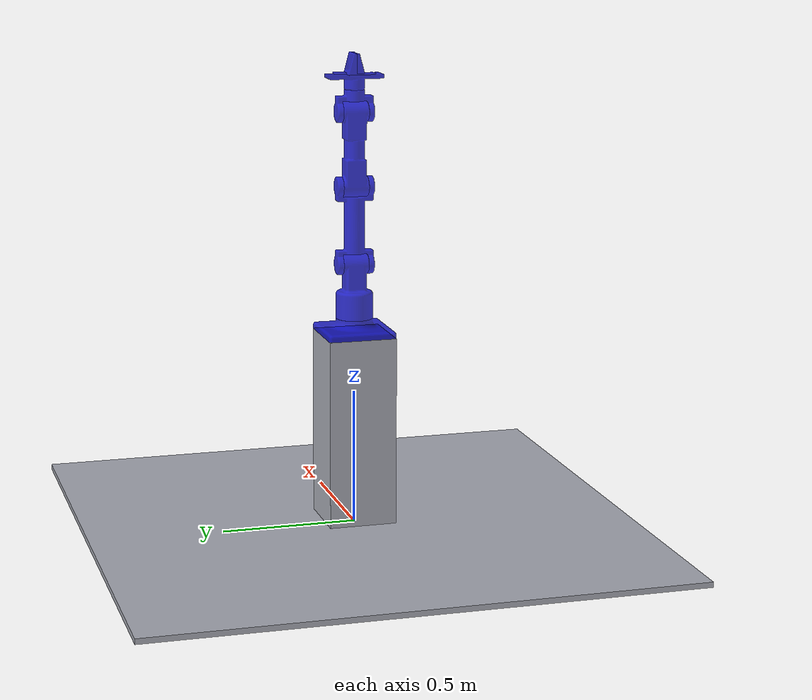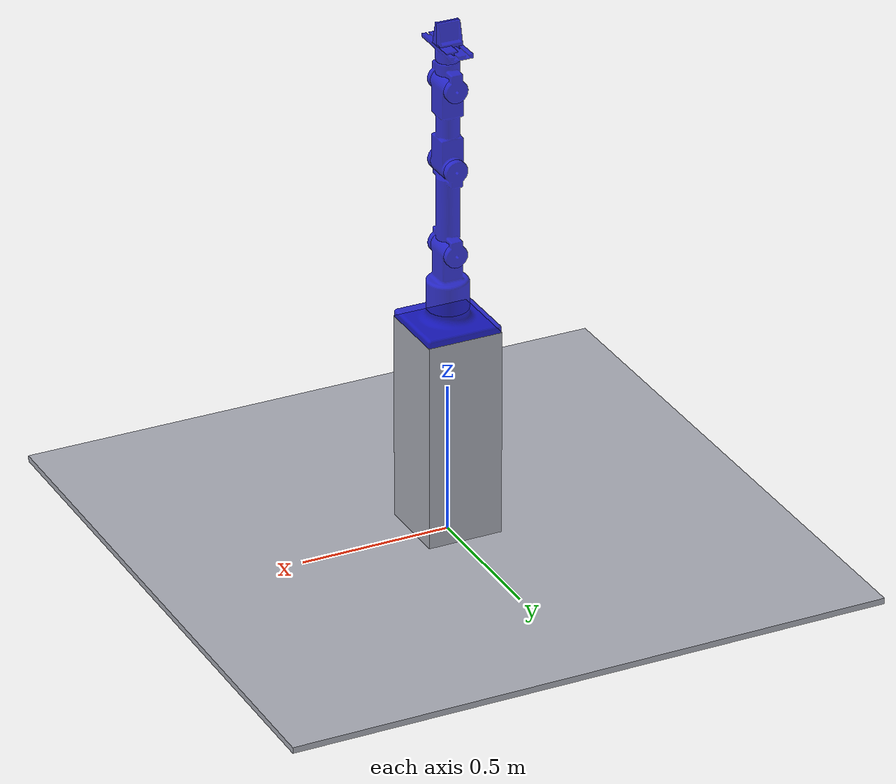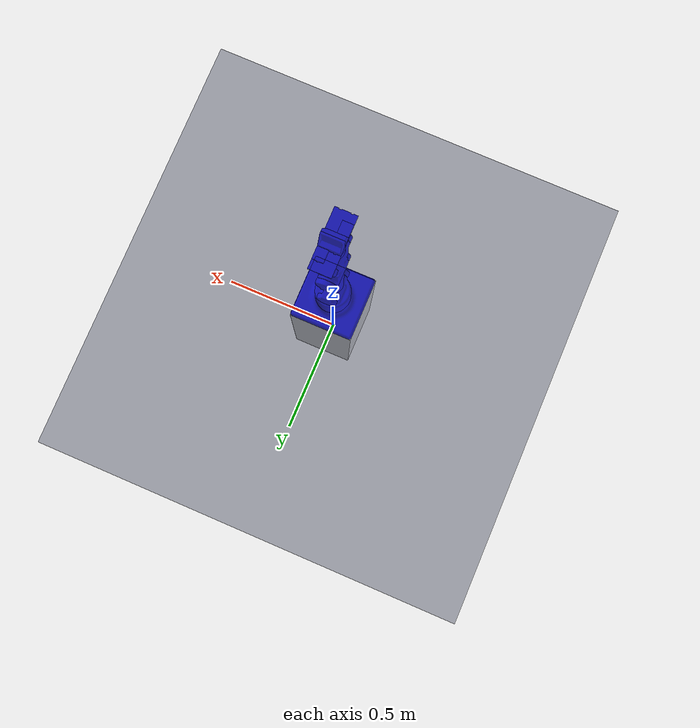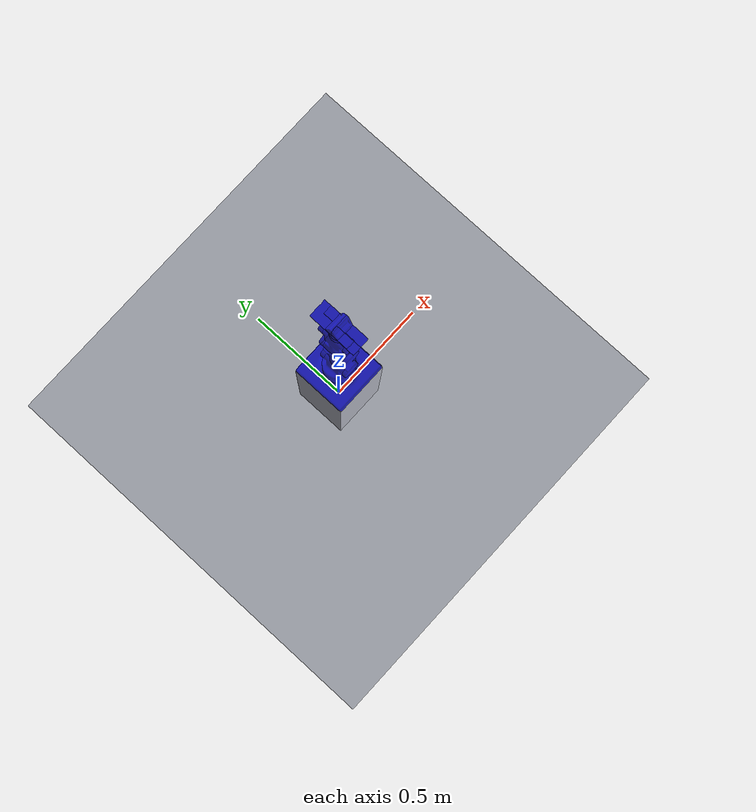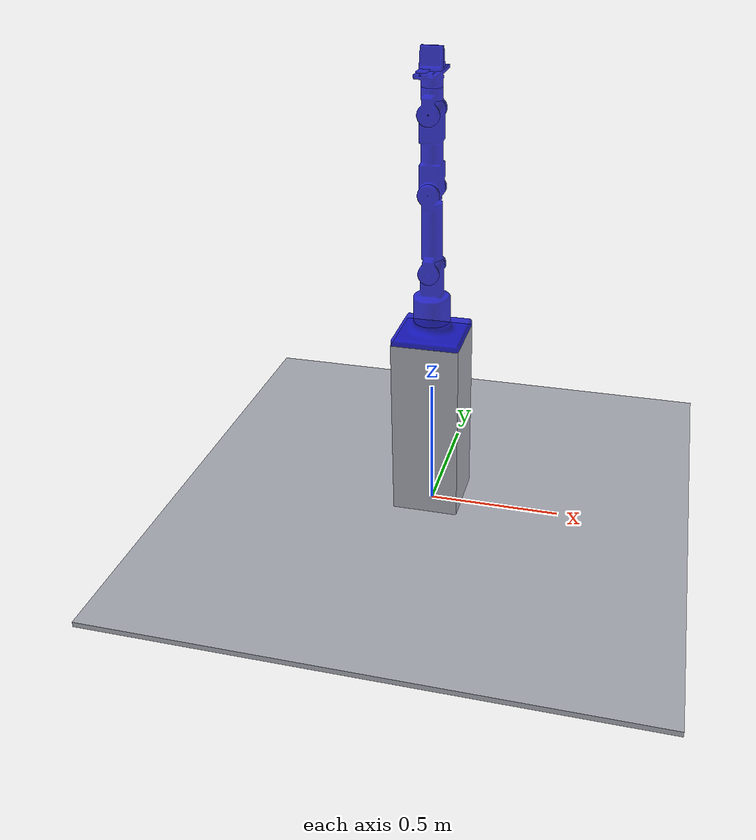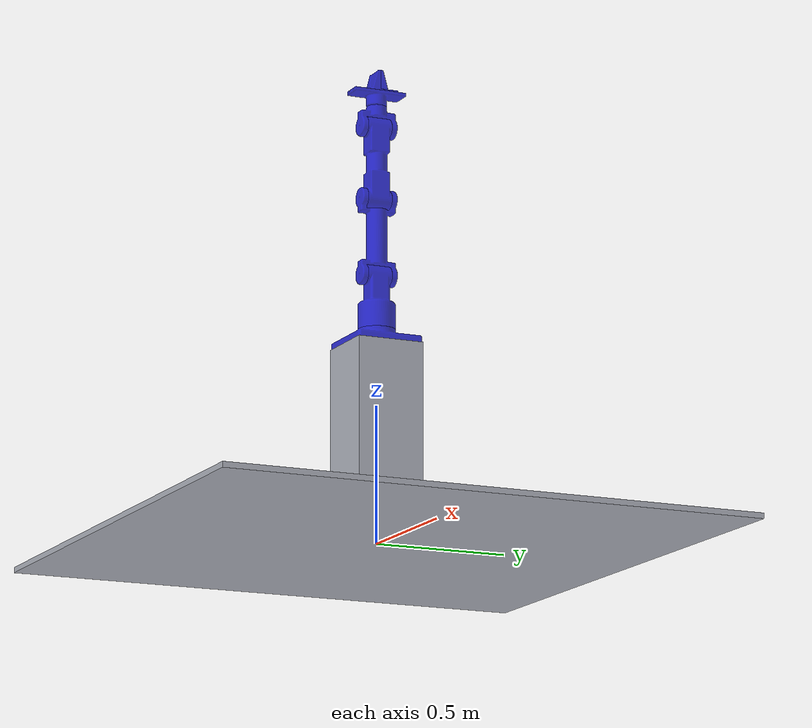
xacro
<?xml version="1.0" ?>

<robot name="robot_stand" xmlns:xacro="http://ros.org/wiki/xacro">
    <xacro:include filename="$(find custom_robot_sim)/urdf/robot_description_no_dummy.urdf.xacro" />

    <link name="base_footprint"/>

    <joint name="footprint_joint" type="fixed">
        <parent link="base_footprint"/>
        <child link="robot_stand_base_link" />
        <origin xyz="0 0 0" rpy="0 0 0"/>
    </joint>

    <link name="robot_stand_base_link">
        <visual>
            <origin xyz="0 0 0" rpy="0 0 0"/>
            <geometry>
                <box size="2.0 2.0 0.02"/>
            </geometry>
            <material name="silver" />
        </visual>
        <collision>
            <origin xyz="0 0 0" rpy="0 0 0"/>
            <geometry>
                <box size="2.0 2.0 0.02"/>
            </geometry>
        </collision>
        <xacro:inertial_box length="2.0" width="2.0" height="0.02" density="2700">
            <origin xyz="0 0 0" rpy="0 0 0"/>
        </xacro:inertial_box>
    </link>

    <joint name="robot_stand_base_joint" type="fixed">
        <parent link="robot_stand_base_link"/>
        <child link="robot_stand_link" />
        <origin xyz="0 0 0.37" rpy="0 0 0"/>
    </joint>

    <link name="robot_stand_link">
        <visual>
            <origin xyz="0 0 0" rpy="0 0 0"/>
            <geometry>
                <box size="0.25 0.25 0.7"/>
            </geometry>
            <material name="silver" />
        </visual>
        <collision>
            <origin xyz="0 0 0" rpy="0 0 0"/>
            <geometry>
                <box size="0.25 0.25 0.7"/>
            </geometry>
        </collision>
        <xacro:inertial_box length="0.25" width="0.25" height="0.7" density="2700">
            <origin xyz="0 0 0" rpy="0 0 0"/>
        </xacro:inertial_box>
    </link>

    <joint name="robot_base_attachment" type="fixed">
        <parent link="robot_stand_link"/>
        <child link="arm_base_plate" />
        <origin xyz="0 0 0.35" rpy="0 0 0"/>
    </joint>

</robot>

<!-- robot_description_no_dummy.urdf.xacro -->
<robot name="custom_manipulator" xmlns:xacro="http://ros.org/wiki/xacro">
    <xacro:include filename="$(find custom_robot_sim)/urdf/inertial_macros.urdf.xacro" />
    <xacro:include filename="$(find custom_robot_sim)/urdf/robot_control.gazebo.xacro" />
    <xacro:include filename="$(find custom_robot_sim)/urdf/materials.urdf.xacro" />

    <!-- ARM BASE PLATE -->

    <link name="arm_base_plate">
        <visual>
            <origin xyz="0 0 0" rpy="0 0 0"/>
            <geometry>
                <mesh filename="$(find custom_robot_sim)/meshes/arm_base_plate.stl" />
            </geometry>
            <material name="blue"/>
        </visual>
        <collision>
            <origin xyz="0 0 ${0.025/2}" rpy="0 0 0"/>
            <geometry>
                <box size="0.25 0.25 0.025"/>
            </geometry>
        </collision>
        <collision>
            <origin xyz="0 0 ${0.025+0.035/2}" rpy="0 0 0"/>
            <geometry>
                <cylinder length="0.035" radius="${0.135/2}" />
            </geometry>
        </collision>
        <xacro:inertial_box length="0.25" width="0.25" height="0.06" density="${pla_density}">
            <origin xyz="0 0 0.03" rpy="0 0 0"/>
        </xacro:inertial_box>
    </link>

    <!-- ARM BASE -->

    <joint type="revolute" name="arm_base_joint">
        <origin xyz="0.0 0.0 0.06" rpy="0.0 0.0 0.0"/>
        <child link="arm_base_link"/>
        <parent link="arm_base_plate"/>
        <axis xyz="0 0 1" rpy="0 0 0"/>
        <limit effort="100" velocity="100" lower="-${pi}" upper="${pi}"/>
        <dynamics damping="0.7" friction="1.0"/>
    </joint>

    <link name="arm_base_link">
        <visual>
            <origin xyz="0 0 0" rpy="0 0 0"/>
            <geometry>
                <mesh filename="$(find custom_robot_sim)/meshes/arm_base_link.stl" />
            </geometry>
            <material name="blue"/>
        </visual>
        <collision>
            <origin xyz="0 0 ${0.1/2}" rpy="0 0 0"/>
            <geometry>
                <cylinder length="0.1" radius="${0.135/2}" />
            </geometry>
        </collision>
        <collision>
            <origin xyz="0 0 0.15" rpy="0 0 0"/>
            <geometry>
                <box size="0.075 0.075 0.1" />
            </geometry>
        </collision>
        <xacro:inertial_cylinder radius="${0.135/2}" length="0.2" density="${pla_density}">
            <origin xyz="0 0 0.1" rpy="0 0 0"/>
        </xacro:inertial_cylinder>
    </link>

    <!-- LINK 1 -->
    <joint type="revolute" name="link_1_joint">
        <origin xyz="0.0 0.0 0.2" rpy="${-pi/2} 0.0 0.0"/>
        <child link="link_1_link"/>
        <parent link="arm_base_link"/>
        <axis xyz="0 0 1" rpy="0 0 0"/>
        <limit effort="100" velocity="100" lower="-${pi/2}" upper="${pi/2}"/>
        <dynamics damping="0.7" friction="1.0"/>
    </joint>

    <link name="link_1_link">
        <visual>
            <origin xyz="0 -${0.285/2} 0" rpy="${pi/2} 0 0"/>
            <geometry>
                <mesh filename="$(find custom_robot_sim)/meshes/link_1.stl" />
            </geometry>
            <material name="blue"/>
        </visual>
        <collision>
            <origin xyz="0 -${(0.0895-0.075)/2} 0" rpy="0 0 0"/>
            <geometry>
                <cylinder length="0.135" radius="${0.0895/2}" />
            </geometry>
        </collision>
        <collision>
            <origin xyz="0 -${0.285/2} 0" rpy="${pi/2} 0 0"/>
            <geometry>
                <cylinder length="0.205" radius="${0.075/2}" />
            </geometry>
        </collision>
        <collision>
            <origin xyz="0 -${0.285-(0.0895-0.075)/2} 0" rpy="0 0 0"/>
            <geometry>
                <cylinder length="0.135" radius="${0.0895/2}" />
            </geometry>
        </collision>
        <xacro:inertial_cylinder radius="${0.075/2}" length="0.205" density="${pla_density}">
            <origin xyz="0 -${0.285/2} 0" rpy="${pi/2} 0 0"/>
        </xacro:inertial_cylinder>
    </link>

    <!-- LINK 2 -->
    <joint type="revolute" name="link_2_joint">
        <origin xyz="0.0 -0.285 0.0" rpy="0.0 0.0 0.0"/>
        <child link="link_2_link"/>
        <parent link="link_1_link"/>
        <axis xyz="0 0 1" rpy="0 0 0"/>
        <limit effort="100" velocity="100" lower="-${pi/2}" upper="${pi/2}"/>
        <dynamics damping="0.7" friction="1.0"/>
    </joint>

    <link name="link_2_link">
        <visual>
            <origin xyz="0 -${0.27/2} 0" rpy="${pi/2} 0 0"/>
            <geometry>
                <mesh filename="$(find custom_robot_sim)/meshes/link_2.stl" />
            </geometry>
            <material name="blue"/>
        </visual>
        <collision>
            <origin xyz="0 -${0.27/2} 0" rpy="${pi/2} 0 0"/>
            <geometry>
                <box size="0.075 0.075 0.27" />
            </geometry>
        </collision>
        <xacro:inertial_box length="0.075" width="0.075" height="0.27" density="${pla_density}">
            <origin xyz="0 -${0.27/2} 0" rpy="${pi/2} 0 0"/>
        </xacro:inertial_box>
    </link>

    <!-- LINK 3 -->
    <joint type="revolute" name="link_3_joint">
        <origin xyz="0.0 -0.27 0.0" rpy="0.0 0.0 0.0"/>
        <child link="link_3_link"/>
        <parent link="link_2_link"/>
        <axis xyz="0 0 1" rpy="0 0 0"/>
        <limit effort="100" velocity="100" lower="-${pi/2}" upper="${pi/2}"/>
        <dynamics damping="0.7" friction="1.0"/>
    </joint>

    <link name="link_3_link">
        <visual>
            <origin xyz="0 -0.08 0" rpy="${pi/2} 0 0"/>
            <geometry>
                <mesh filename="$(find custom_robot_sim)/meshes/link_3.stl" />
            </geometry>
            <material name="blue"/>
        </visual>
        <collision>
            <origin xyz="0 -${(0.0995-0.075)/2} 0" rpy="0 0 0"/>
            <geometry>
                <cylinder length="0.135" radius="${0.0995/2}" />
            </geometry>
        </collision>
        <collision>
            <origin xyz="0 -0.06 0" rpy="${pi/2} 0 0"/>
            <geometry>
                <cylinder length="0.04" radius="${0.075/2}" />
            </geometry>
        </collision>
        <xacro:inertial_cylinder radius="${0.075/2}" length="0.04" density="${pla_density}">
            <origin xyz="0 -0.06 0" rpy="${pi/2} 0 0"/>
        </xacro:inertial_cylinder>
    </link>

    <!-- GRIPPER BASE -->
    <joint type="revolute" name="gripper_base_joint">
        <origin xyz="0.0 -0.08 0.0" rpy="${pi/2} ${pi/2} 0.0"/>
        <child link="gripper_base_link"/>
        <parent link="link_3_link"/>
        <axis xyz="0 0 1" rpy="0 0 0"/>
        <limit effort="100" velocity="100" lower="-${pi}" upper="${pi}"/>
        <dynamics damping="0.7" friction="1.0"/>
    </joint>

    <link name="gripper_base_link">
        <visual>
            <origin xyz="0 0 0" rpy="0 0 0"/>
            <geometry>
                <mesh filename="$(find custom_robot_sim)/meshes/gripper_base.stl" />
            </geometry>
            <material name="blue"/>
        </visual>
        <collision>
            <origin xyz="0 0 0.02" rpy="0 0 0"/>
            <geometry>
                <cylinder length="0.04" radius="${0.075/2}" />
            </geometry>
        </collision>
        <collision>
            <origin xyz="0 0.0 0.0475" rpy="0 0 0"/>
            <geometry>
                <box size="0.2 0.075 0.015"/>
            </geometry>
        </collision>
        <xacro:inertial_cylinder radius="${0.075/2}" length="0.04" density="${pla_density}">
            <origin xyz="0 0 0.02" rpy="0 0 0"/>
        </xacro:inertial_cylinder>
    </link>

    <!-- GRIPPER FINGER LEFT -->
    <joint type="prismatic" name="gripper_finger_left_joint">
        <origin xyz="0.02 0 0.055" rpy="0 ${pi/2} 0"/>
        <child link="gripper_finger_left_link"/>
        <parent link="gripper_base_link"/>
        <axis xyz="0 0 1" rpy="0 0 0"/>
        <limit effort="100" velocity="100" lower="-1.0" upper="1.0"/>
        <dynamics damping="0.7" friction="1.0"/>
    </joint>

    <link name="gripper_finger_left_link">
        <visual>
            <origin xyz="0 0 0" rpy="0 -${pi/2} 0"/>
            <geometry>
                <mesh filename="$(find custom_robot_sim)/meshes/gripper_finger.stl" />
            </geometry>
            <material name="blue"/>
        </visual>
        <collision>
            <origin xyz="-0.0025 -${0.0375/2} 0" rpy="0 -${pi/2} 0"/>
            <geometry>
                <box size="0.1 0.0375 0.005"/>
            </geometry>
        </collision>
        <collision>
            <origin xyz="-0.04 0 -0.035" rpy="0 -${pi/2} 0"/>
            <geometry>
                <box size="0.03 0.075 0.07"/>
            </geometry>
        </collision>
        <xacro:inertial_box length="0.03" width="0.075" height="0.07" density="${pla_density}">
            <origin xyz="-0.04 0 -0.035" rpy="0 -${pi/2} 0"/>
        </xacro:inertial_box>
    </link>

    <!-- GRIPPER FINGER RIGHT -->
    <joint type="prismatic" name="gripper_finger_right_joint">
        <mimic joint="gripper_finger_left_joint" multiplier="1" offset="0"/>
        <origin xyz="-0.02 0 0.055" rpy="0 ${pi/2} ${pi}"/>
        <child link="gripper_finger_right_link"/>
        <parent link="gripper_base_link"/>
        <axis xyz="0 0 1" rpy="0 0 0"/>
        <limit effort="100" velocity="100" lower="-1.0" upper="1.0"/>
        <dynamics damping="0.7" friction="1.0"/>
    </joint>

    <link name="gripper_finger_right_link">
        <visual>
            <origin xyz="0 0 0" rpy="0 -${pi/2} 0"/>
            <geometry>
                <mesh filename="$(find custom_robot_sim)/meshes/gripper_finger.stl" />
            </geometry>
            <material name="blue"/>
        </visual>
        <collision>
            <origin xyz="-0.0025 -${0.0375/2} 0" rpy="0 -${pi/2} 0"/>
            <geometry>
                <box size="0.1 0.0375 0.005"/>
            </geometry>
        </collision>
        <collision>
            <origin xyz="-0.04 0 -0.035" rpy="0 -${pi/2} 0"/>
            <geometry>
                <box size="0.03 0.075 0.07"/>
            </geometry>
        </collision>
        <xacro:inertial_box length="0.03" width="0.075" height="0.07" density="${pla_density}">
            <origin xyz="-0.04 0 -0.035" rpy="0 -${pi/2} 0"/>
        </xacro:inertial_box>
    </link>

</robot>

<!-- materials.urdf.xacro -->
<robot name="xacro_macros" xmlns:xacro="http://ros.org/wiki/xacro">
    <xacro:property name="pla_density" value="600" />
    <xacro:property name="aluminium_density" value="2700" />

    <material name="blue">
        <color rgba="0 0 0.8 0.8"/>
    </material>

    <material name="green">
        <color rgba="0 ${145/255} ${29/255} 0.8"/>
    </material>

    <material name="orange">
        <color rgba="${255/255} ${165/255} 0.0 0.8"/>
    </material>

    <material name="silver">
        <color rgba="${169/255} ${172/255} ${182/255} 1.0"/>
    </material>

    <material name="black">
        <color rgba="${0/255} ${0/255} ${0/255} 1.0"/>
    </material>

</robot>
